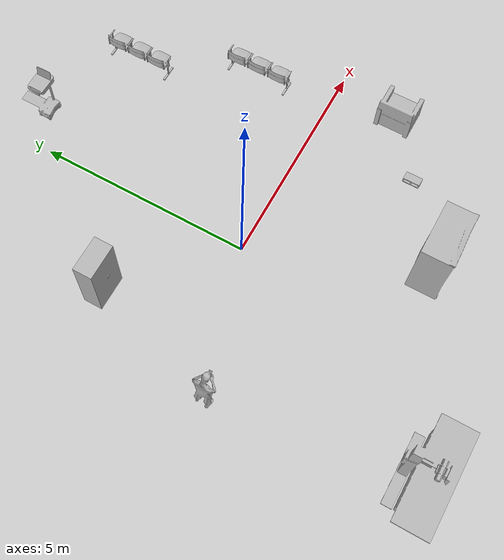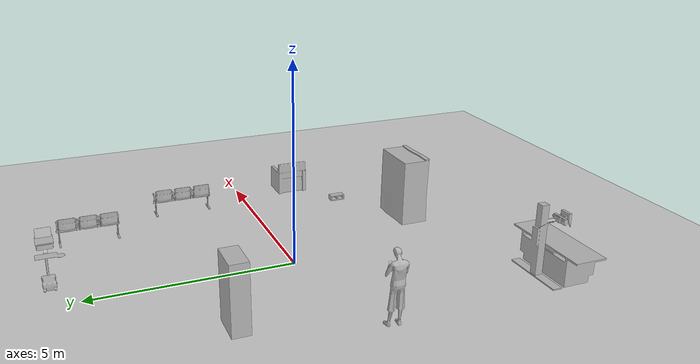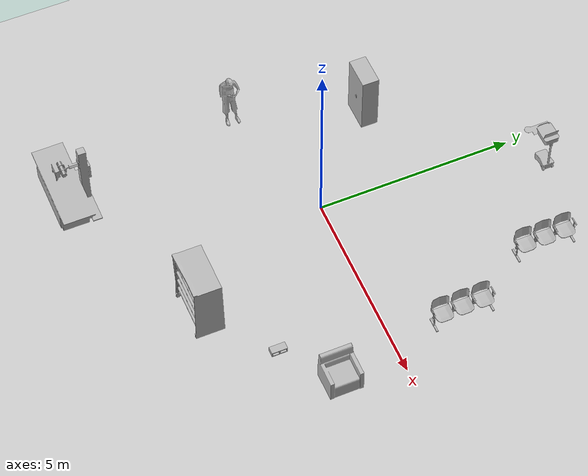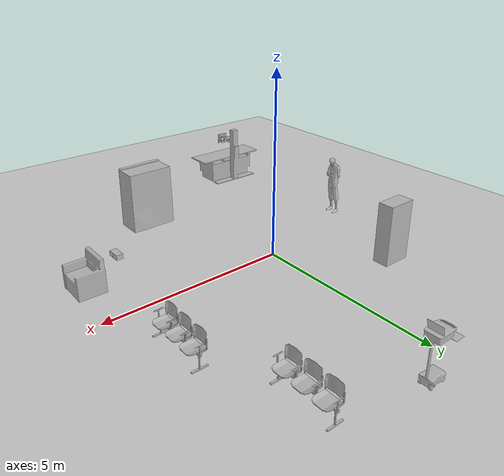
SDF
<sdf version="1.7">
 <world name="default">
  <light name="sun" type="directional">
   <pose>0 0 10 0 -0 0</pose>
   <diffuse>0.8 0.8 0.8 1</diffuse>
   <specular>0.2 0.2 0.2 1</specular>
   <attenuation>
    <range>1000</range>
    <constant>0.9</constant>
    <linear>0.01</linear>
    <quadratic>0.001</quadratic>
   </attenuation>
   <direction>-0.5 0.1 -0.9</direction>
   <spot><inner_angle>0</inner_angle><outer_angle>0</outer_angle><falloff>0</falloff></spot>
  </light>
  <model name="ground_plane">
   <static>1</static>
   <link name="link">
    <collision name="collision">
     <geometry><plane><normal>0 0 1</normal><size>100 100</size></plane></geometry>
     <surface><friction><ode><mu>100</mu><mu2>50</mu2></ode></friction></surface>
    </collision>
    <visual name="visual">
     <cast_shadows>0</cast_shadows>
     <geometry><plane><normal>0 0 1</normal><size>100 100</size></plane></geometry>
     <material>
      <script><uri>file://media/materials/scripts/gazebo.material</uri><name>Gazebo/Grey</name></script>
     </material>
    </visual>
   </link>
  </model>
  <gravity>0 0 -9.8</gravity>
  <magnetic_field>6e-06 2.3e-05 -4.2e-05</magnetic_field>
  <atmosphere type="adiabatic"/>
  <physics type="ode">
   <max_step_size>0.001</max_step_size>
   <real_time_factor>1</real_time_factor>
   <real_time_update_rate>1000</real_time_update_rate>
  </physics>
  <scene><ambient>0.4 0.4 0.4 1</ambient><background>0.7 0.7 0.7 1</background><shadows>1</shadows></scene>
  <audio><device>default</device></audio>
  <spherical_coordinates>
   <surface_model>EARTH_WGS84</surface_model>
   <latitude_deg>0</latitude_deg>
   <longitude_deg>0</longitude_deg>
   <elevation>0</elevation>
   <heading_deg>0</heading_deg>
  </spherical_coordinates>
  <model name="MetalCabinet">
   <static>1</static>
   <link name="body">
    <visual name="visual">
     <geometry><mesh><uri>model://MetalCabinet/meshes/MetalCabinet.obj</uri></mesh></geometry>
    </visual>
    <collision name="collision">
     <geometry><mesh><uri>model://MetalCabinet/meshes/MetalCabinet.obj</uri></mesh></geometry>
    </collision>
   </link>
   <pose>-2.25175 2.11733 0 0 -0 0</pose>
  </model>
  <model name="MaleVisitorOnPhone">
   <static>1</static>
   <link name="body">
    <visual name="visual">
     <geometry><mesh><uri>model://MaleVisitorOnPhone/meshes/MaleVisitorStatic.obj</uri></mesh></geometry>
    </visual>
    <collision name="collision">
     <geometry><mesh><uri>model://MaleVisitorOnPhone/meshes/MaleVisitorStatic_Col.obj</uri></mesh></geometry>
    </collision>
   </link>
   <pose>-3.37041 -0.953967 0 0 -0 0</pose>
  </model>
  <model name="StorageRackCoverOpen">
   <link name="link">
    <visual name="visual">
     <geometry><mesh><uri>model://StorageRackCoverOpen/meshes/StorageRackCoverOpen.obj</uri></mesh></geometry>
    </visual>
    <collision name="collision">
     <geometry><mesh><uri>model://StorageRackCoverOpen/meshes/StorageRackCoverOpen.obj</uri></mesh></geometry>
    </collision>
    <inertial>
     <inertia><ixx>1</ixx><ixy>0</ixy><ixz>0</ixz><iyy>1</iyy><iyz>0</iyz><izz>1</izz></inertia>
     <mass>1</mass>
    </inertial>
   </link>
   <pose>1.63444 -3.8165 -1e-06 0 2e-06 0</pose>
  </model>
  <model name="WhiteChipChair">
   <static>1</static>
   <link name="body">
    <visual name="visual">
     <geometry><mesh><uri>model://WhiteChipChair/meshes/WhiteChipChair.obj</uri></mesh></geometry>
    </visual>
    <collision name="collision">
     <geometry><mesh><uri>model://WhiteChipChair/meshes/WhiteChipChair_Col.obj</uri></mesh></geometry>
    </collision>
   </link>
   <pose>4.10081 1.82064 0 0 -0 0</pose>
  </model>
  <model name="BMWCart">
   <link name="body">
    <visual name="visual">
     <geometry><mesh><uri>model://BMWCart/meshes/Cart_BMW.obj</uri></mesh></geometry>
    </visual>
    <collision name="collision">
     <geometry><mesh><uri>model://BMWCart/meshes/Cart_BMW_Col.obj</uri></mesh></geometry>
    </collision>
    <inertial>
     <inertia><ixx>1</ixx><ixy>0</ixy><ixz>0</ixz><iyy>1</iyy><iyz>0</iyz><izz>1</izz></inertia>
     <mass>1</mass>
    </inertial>
   </link>
   <pose>0.887579 5.59275 0.002079 -1e-06 -1e-06 0</pose>
  </model>
  <model name="aws_robomaker_residential_SofaB_01">
   <link name="link">
    <inertial>
     <mass>72.5</mass>
     <inertia><ixx>1</ixx><ixy>0</ixy><ixz>0</ixz><iyy>1</iyy><iyz>0</iyz><izz>1</izz></inertia>
    </inertial>
    <collision name="collision">
     <geometry>
      <mesh>
       <uri>model://aws_robomaker_residential_SofaB_01/meshes/aws_SofaB_01_collision.DAE</uri>
       <scale>1 1 1</scale>
      </mesh>
     </geometry>
    </collision>
    <visual name="visual">
     <geometry>
      <mesh><uri>model://aws_robomaker_residential_SofaB_01/meshes/aws_SofaB_01_visual.DAE</uri></mesh>
     </geometry>
     <meta><layer>1</layer></meta>
    </visual>
   </link>
   <pose>4.65228 -1.52992 -0 0 -0 0</pose>
  </model>
  <model name="cinder_block_2">
   <link name="link">
    <inertial>
     <pose>0 0 0.071438 0 -0 0</pose>
     <mass>5</mass>
     <inertia>
      <ixx>0.06908</ixx>
      <ixy>0</ixy>
      <iyy>0.028705</iyy>
      <ixz>0</ixz>
      <iyz>0</iyz>
      <izz>0.073708</izz>
     </inertia>
    </inertial>
    <visual name="visual">
     <geometry><mesh><uri>model://cinder_block_2/meshes/cinder_block.dae</uri></mesh></geometry>
    </visual>
    <collision name="top">
     <pose>0 0 0.130175 0 -0 0</pose>
     <geometry><box><size>0.19368 0.396875 0.0254</size></box></geometry>
     <surface>
      <contact><ode><max_vel>0.1</max_vel><min_depth>0.001</min_depth></ode></contact>
      <friction><ode><mu>1</mu><mu2>1</mu2></ode></friction>
     </surface>
    </collision>
    <collision name="bottom">
     <pose>0 0 0.0127 0 -0 0</pose>
     <geometry><box><size>0.19368 0.396875 0.0254</size></box></geometry>
     <surface>
      <contact><ode><max_vel>0.1</max_vel><min_depth>0.001</min_depth></ode></contact>
      <friction><ode><mu>1</mu><mu2>1</mu2></ode></friction>
     </surface>
    </collision>
    <collision name="left">
     <pose>0 -0.185738 0.071438 0 -0 0</pose>
     <geometry><box><size>0.19368 0.0254 0.092075</size></box></geometry>
     <surface>
      <contact><ode><max_vel>0.1</max_vel><min_depth>0.001</min_depth></ode></contact>
      <friction><ode><mu>1</mu><mu2>1</mu2></ode></friction>
     </surface>
    </collision>
    <collision name="right">
     <pose>0 0.185738 0.071438 0 -0 0</pose>
     <geometry><box><size>0.19368 0.0254 0.092075</size></box></geometry>
     <surface>
      <contact><ode><max_vel>0.1</max_vel><min_depth>0.001</min_depth></ode></contact>
      <friction><ode><mu>1</mu><mu2>1</mu2></ode></friction>
     </surface>
    </collision>
    <collision name="middle">
     <pose>0 0 0.071438 0 -0 0</pose>
     <geometry><box><size>0.19368 0.0254 0.092075</size></box></geometry>
     <surface>
      <contact><ode><max_vel>0.1</max_vel><min_depth>0.001</min_depth></ode></contact>
      <friction><ode><mu>1</mu><mu2>1</mu2></ode></friction>
     </surface>
    </collision>
   </link>
   <pose>3.337 -2.5339 -1e-05 0 -0 0</pose>
  </model>
  <model name="XRayMachine">
   <static>1</static>
   <link name="body">
    <visual name="visual">
     <geometry><mesh><uri>model://XRayMachine/meshes/XRayMachine.obj</uri></mesh></geometry>
    </visual>
    <collision name="collision">
     <geometry><mesh><uri>model://XRayMachine/meshes/XRayMachine_Col.obj</uri></mesh></geometry>
    </collision>
   </link>
   <pose>-2.6078 -5.78322 0 0 -0 0</pose>
  </model>
  <model name="WhiteChipChair_0">
   <static>1</static>
   <link name="body">
    <visual name="visual">
     <geometry><mesh><uri>model://WhiteChipChair/meshes/WhiteChipChair.obj</uri></mesh></geometry>
    </visual>
    <collision name="collision">
     <geometry><mesh><uri>model://WhiteChipChair/meshes/WhiteChipChair_Col.obj</uri></mesh></geometry>
    </collision>
   </link>
   <pose>3.10445 4.46546 0 0 -0 0</pose>
  </model>
 </world>
</sdf>
